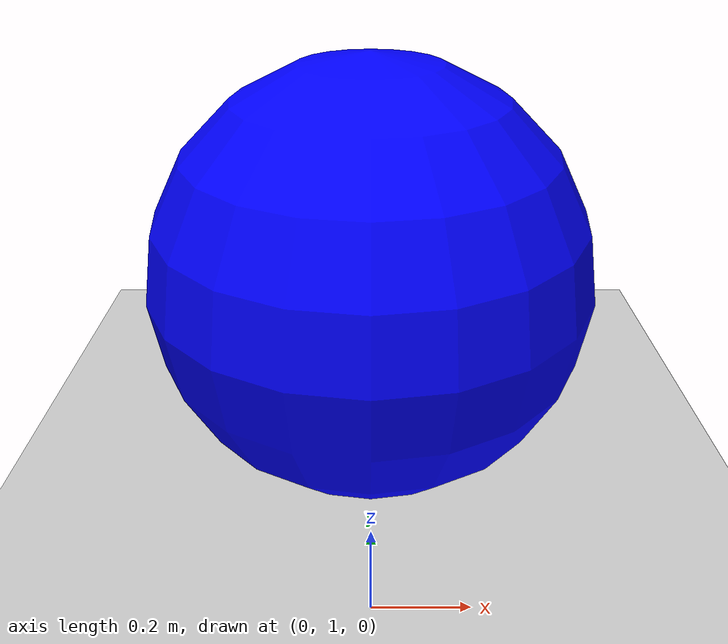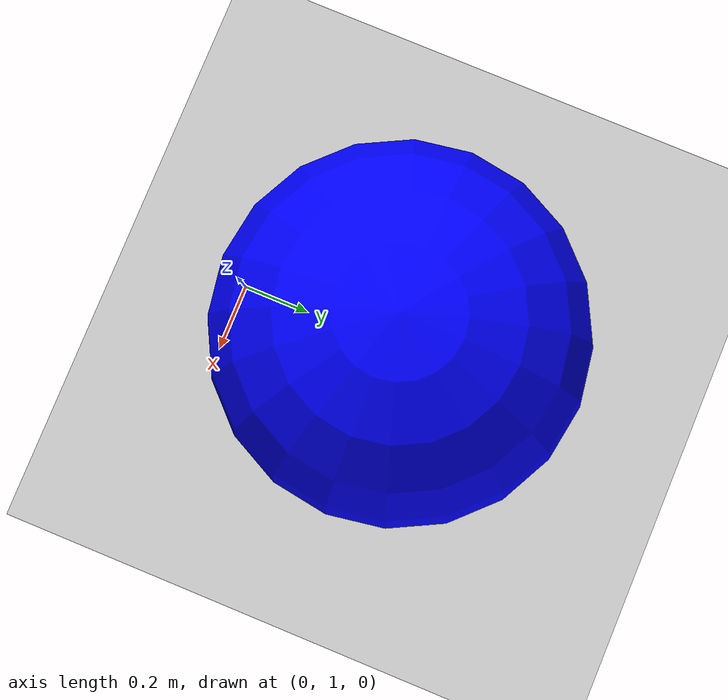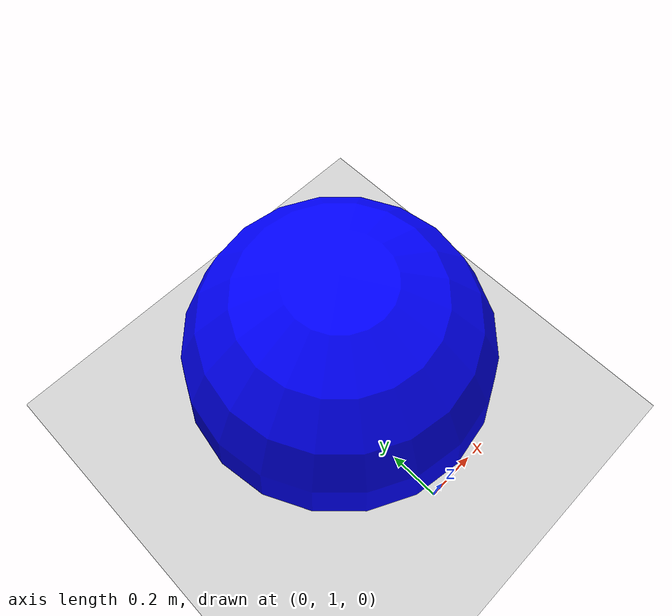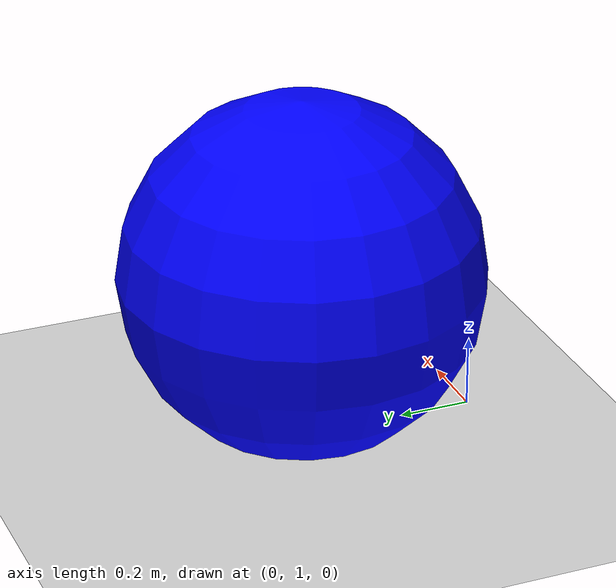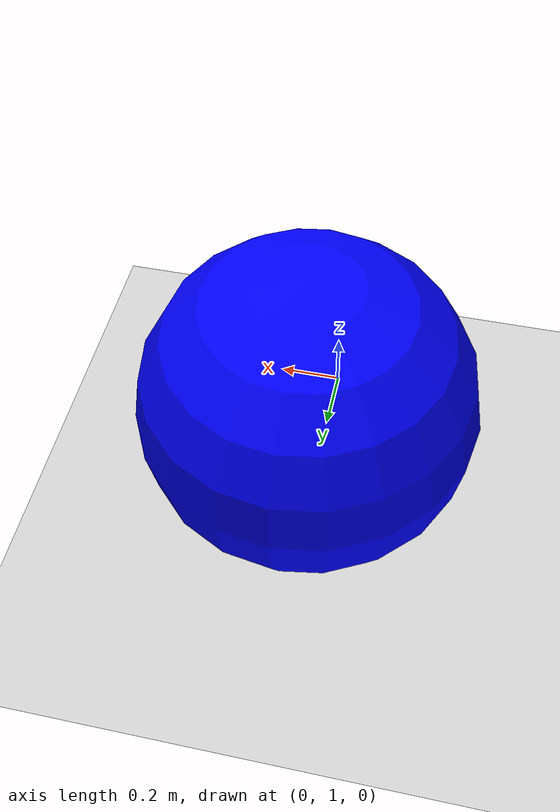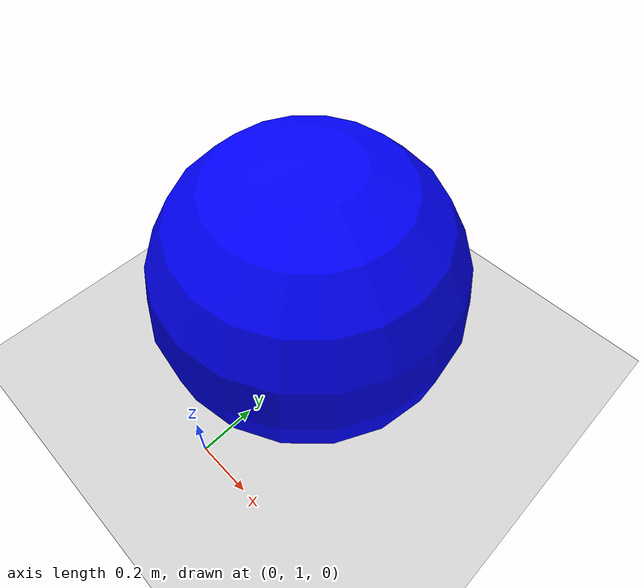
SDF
<?xml version="1.0" ?>

<sdf version="1.8">
  <world name="demo">
    <plugin
      filename="ignition-gazebo-scene-broadcaster-system"
      name="gz::sim::systems::SceneBroadcaster">
    </plugin>
    <scene><grid>false</grid></scene>
    <light name="sun" type="directional">
      <cast_shadows>true</cast_shadows>
      <pose>0 0 10 0 0 0</pose>
      <diffuse>0.8 0.8 0.8 1</diffuse>
      <specular>0.2 0.2 0.2 1</specular>
      <attenuation>
        <range>1000</range>
        <constant>0.9</constant>
        <linear>0.01</linear>
        <quadratic>0.001</quadratic>
      </attenuation>
      <direction>-0.5 0.1 -0.9</direction>
    </light>
    <model name="ground_plane">
      <static>true</static>
      <link name="link">
        <collision name="collision">
          <geometry>
            <plane>
              <normal>0 0 1</normal>
              <size>100 100</size>
            </plane>
          </geometry>
        </collision>
        <visual name="visual">
          <geometry>
            <plane>
              <normal>0 0 1</normal>
              <size>100 100</size>
            </plane>
          </geometry>
          <material>
            <ambient>0.8 0.8 0.8 1</ambient>
            <diffuse>0.8 0.8 0.8 1</diffuse>
            <specular>0.8 0.8 0.8 1</specular>
          </material>
        </visual>
      </link>
    </model>

    <model name="sphere">
      <pose>0 1.5 0.5 0 0 0</pose>
      <link name="sphere_link">
        <inertial>
          <inertia>
            <ixx>0.1</ixx>
            <ixy>0</ixy>
            <ixz>0</ixz>
            <iyy>0.1</iyy>
            <iyz>0</iyz>
            <izz>0.1</izz>
          </inertia>
          <mass>1.0</mass>
        </inertial>
        <collision name="sphere_collision">
          <geometry>
            <sphere>
              <radius>0.5</radius>
            </sphere>
          </geometry>
        </collision>

        <visual name="sphere_visual">
          <geometry>
            <sphere>
              <radius>0.5</radius>
            </sphere>
          </geometry>
          <material>
            <ambient>0 0 1 1</ambient>
            <diffuse>0 0 1 1</diffuse>
            <specular>0 0 1 1</specular>
          </material>
        </visual>
      </link>
    </model>

  </world>
</sdf>
